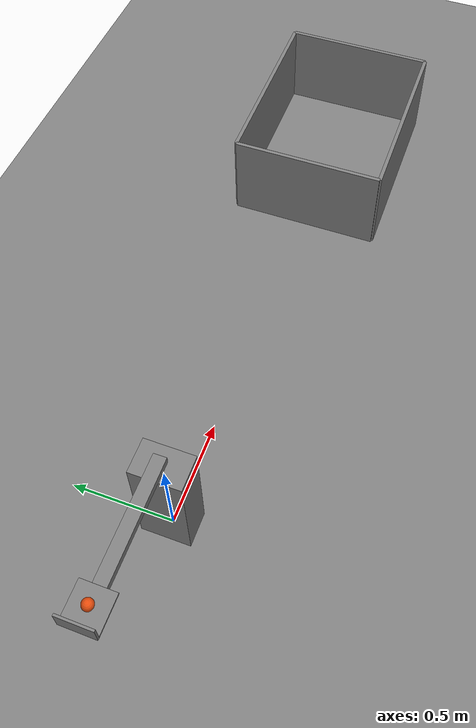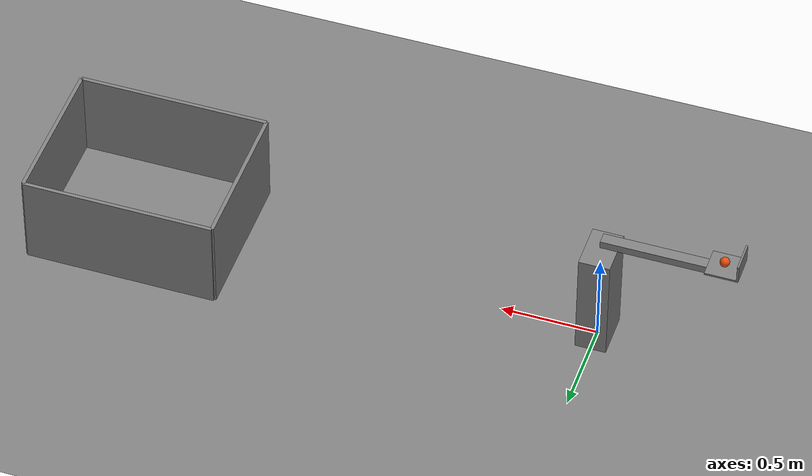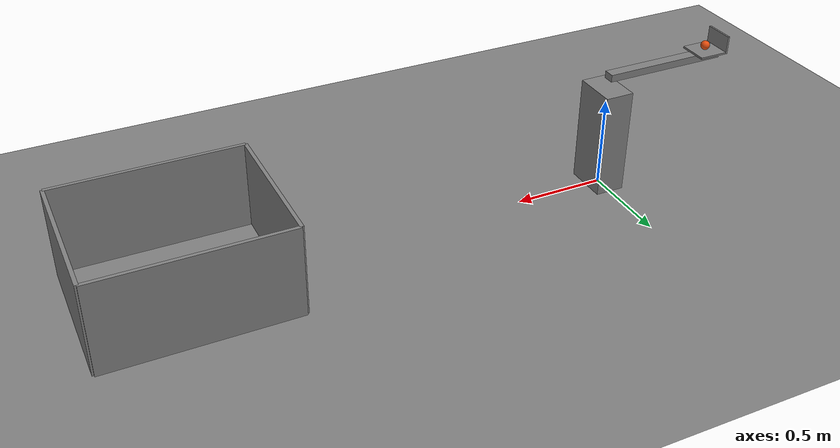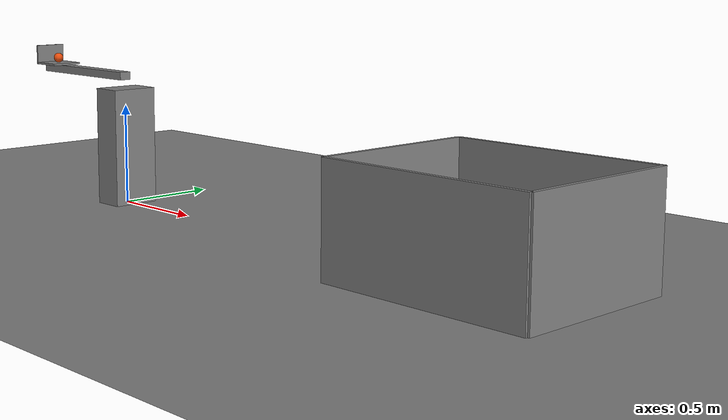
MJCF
<mujoco model="spring_catapult_into_a_bucket">
  <compiler angle="radian"/>
  <option timestep="0.002"/>
  <worldbody>
    <geom name="floor" type="plane" size="8 8 0.1" friction="0.8 0.005 0.002"/>
    <geom name="catapult_stand" type="box" pos="0 0 0.295" size="0.08 0.12 0.295"/>
    <body name="catapult" pos="0 0 0.65">
      <joint name="catapult_hinge" type="hinge" pos="0 0 0" axis="0 1 0" limited="true" range="0 0.959931" stiffness="4" springref="1.22173" damping="0.025" armature="0.01"/>
      <geom name="catapult_arm" type="box" pos="-0.35 0 0" size="0.35 0.03 0.02" mass="0.2"/>
      <geom name="catapult_scoop_base" type="box" pos="-0.62 0 0.025" size="0.08 0.08 0.005" mass="0.02"/>
      <geom name="catapult_scoop_back" type="box" pos="-0.705 0 0.07" size="0.005 0.08 0.05" mass="0.01"/>
    </body>
    <body name="ball" pos="-0.62 0 0.705">
      <freejoint/>
      <geom name="ball" type="sphere" pos="0 0 0" size="0.025" mass="0.04" condim="6" friction="0.8 0.01 0.005" solref="0.01 1" rgba="0.9 0.3 0.05 1"/>
    </body>
    <body name="bucket">
      <geom name="bucket_base" type="box" pos="2.38 0 0.01" size="0.5 0.4 0.01"/>
      <geom name="bucket_near_wall" type="box" pos="1.88 0 0.25" size="0.01 0.4 0.25"/>
      <geom name="bucket_far_wall" type="box" pos="2.88 0 0.25" size="0.01 0.4 0.25"/>
      <geom name="bucket_left_wall" type="box" pos="2.38 0.4 0.25" size="0.5 0.01 0.25"/>
      <geom name="bucket_right_wall" type="box" pos="2.38 -0.4 0.25" size="0.5 0.01 0.25"/>
    </body>
  </worldbody>
  <keyframe>
    <key name="start" qpos="0 -0.62 0 0.705 1 0 0 0" qvel="0 0 0 0 0 0 0"/>
  </keyframe>
</mujoco>
